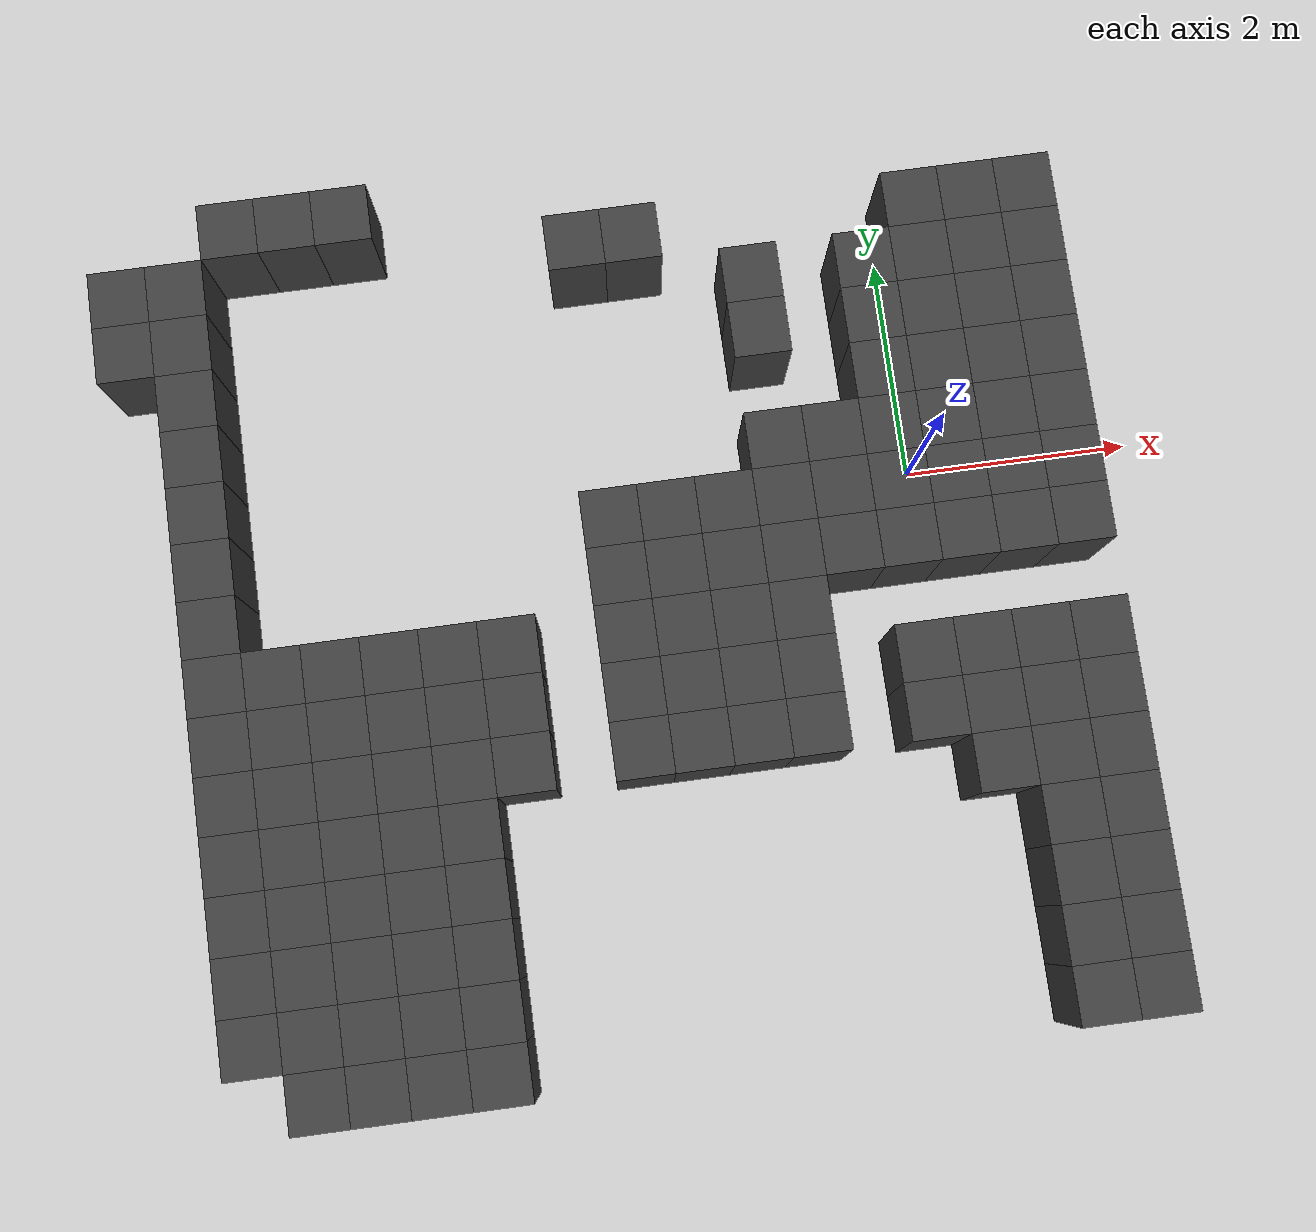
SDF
<sdf version="1.7">
 <world name="map_14735">
  <model name="ground_plane">
   <static>true</static>
   <link name="link">
    <collision name="collision">
     <geometry><plane><normal>0 0 1</normal><size>200 200</size></plane></geometry>
    </collision>
    <visual name="visual">
     <geometry><plane><normal>0 0 1</normal><size>200 200</size></plane></geometry>
     <material><ambient>0.8 0.8 0.8 1</ambient><diffuse>0.8 0.8 0.8 1</diffuse></material>
    </visual>
   </link>
  </model>
  <model name="maze_environment">
   <static>true</static>
   <link name="wall_592">
    <pose>-5.750 2.750 0.500 0 0 0</pose>
    <collision name="col"><geometry><box><size>0.5 0.5 1.0</size></box></geometry></collision>
    <visual name="vis">
     <geometry><box><size>0.5 0.5 1.0</size></box></geometry>
     <material><ambient>0.15 0.15 0.15 1</ambient><diffuse>0.25 0.25 0.25 1</diffuse></material>
    </visual>
   </link>
   <link name="wall_593">
    <pose>-5.250 2.750 0.500 0 0 0</pose>
    <collision name="col"><geometry><box><size>0.5 0.5 1.0</size></box></geometry></collision>
    <visual name="vis">
     <geometry><box><size>0.5 0.5 1.0</size></box></geometry>
     <material><ambient>0.15 0.15 0.15 1</ambient><diffuse>0.25 0.25 0.25 1</diffuse></material>
    </visual>
   </link>
   <link name="wall_594">
    <pose>-4.750 2.750 0.500 0 0 0</pose>
    <collision name="col"><geometry><box><size>0.5 0.5 1.0</size></box></geometry></collision>
    <visual name="vis">
     <geometry><box><size>0.5 0.5 1.0</size></box></geometry>
     <material><ambient>0.15 0.15 0.15 1</ambient><diffuse>0.25 0.25 0.25 1</diffuse></material>
    </visual>
   </link>
   <link name="wall_621">
    <pose>-6.750 2.250 0.500 0 0 0</pose>
    <collision name="col"><geometry><box><size>0.5 0.5 1.0</size></box></geometry></collision>
    <visual name="vis">
     <geometry><box><size>0.5 0.5 1.0</size></box></geometry>
     <material><ambient>0.15 0.15 0.15 1</ambient><diffuse>0.25 0.25 0.25 1</diffuse></material>
    </visual>
   </link>
   <link name="wall_622">
    <pose>-6.250 2.250 0.500 0 0 0</pose>
    <collision name="col"><geometry><box><size>0.5 0.5 1.0</size></box></geometry></collision>
    <visual name="vis">
     <geometry><box><size>0.5 0.5 1.0</size></box></geometry>
     <material><ambient>0.15 0.15 0.15 1</ambient><diffuse>0.25 0.25 0.25 1</diffuse></material>
    </visual>
   </link>
   <link name="wall_623">
    <pose>-2.750 2.250 0.500 0 0 0</pose>
    <collision name="col"><geometry><box><size>0.5 0.5 1.0</size></box></geometry></collision>
    <visual name="vis">
     <geometry><box><size>0.5 0.5 1.0</size></box></geometry>
     <material><ambient>0.15 0.15 0.15 1</ambient><diffuse>0.25 0.25 0.25 1</diffuse></material>
    </visual>
   </link>
   <link name="wall_624">
    <pose>-2.250 2.250 0.500 0 0 0</pose>
    <collision name="col"><geometry><box><size>0.5 0.5 1.0</size></box></geometry></collision>
    <visual name="vis">
     <geometry><box><size>0.5 0.5 1.0</size></box></geometry>
     <material><ambient>0.15 0.15 0.15 1</ambient><diffuse>0.25 0.25 0.25 1</diffuse></material>
    </visual>
   </link>
   <link name="wall_625">
    <pose>0.250 2.250 0.500 0 0 0</pose>
    <collision name="col"><geometry><box><size>0.5 0.5 1.0</size></box></geometry></collision>
    <visual name="vis">
     <geometry><box><size>0.5 0.5 1.0</size></box></geometry>
     <material><ambient>0.15 0.15 0.15 1</ambient><diffuse>0.25 0.25 0.25 1</diffuse></material>
    </visual>
   </link>
   <link name="wall_626">
    <pose>0.750 2.250 0.500 0 0 0</pose>
    <collision name="col"><geometry><box><size>0.5 0.5 1.0</size></box></geometry></collision>
    <visual name="vis">
     <geometry><box><size>0.5 0.5 1.0</size></box></geometry>
     <material><ambient>0.15 0.15 0.15 1</ambient><diffuse>0.25 0.25 0.25 1</diffuse></material>
    </visual>
   </link>
   <link name="wall_627">
    <pose>1.250 2.250 0.500 0 0 0</pose>
    <collision name="col"><geometry><box><size>0.5 0.5 1.0</size></box></geometry></collision>
    <visual name="vis">
     <geometry><box><size>0.5 0.5 1.0</size></box></geometry>
     <material><ambient>0.15 0.15 0.15 1</ambient><diffuse>0.25 0.25 0.25 1</diffuse></material>
    </visual>
   </link>
   <link name="wall_640">
    <pose>-6.750 1.750 0.500 0 0 0</pose>
    <collision name="col"><geometry><box><size>0.5 0.5 1.0</size></box></geometry></collision>
    <visual name="vis">
     <geometry><box><size>0.5 0.5 1.0</size></box></geometry>
     <material><ambient>0.15 0.15 0.15 1</ambient><diffuse>0.25 0.25 0.25 1</diffuse></material>
    </visual>
   </link>
   <link name="wall_641">
    <pose>-6.250 1.750 0.500 0 0 0</pose>
    <collision name="col"><geometry><box><size>0.5 0.5 1.0</size></box></geometry></collision>
    <visual name="vis">
     <geometry><box><size>0.5 0.5 1.0</size></box></geometry>
     <material><ambient>0.15 0.15 0.15 1</ambient><diffuse>0.25 0.25 0.25 1</diffuse></material>
    </visual>
   </link>
   <link name="wall_642">
    <pose>-1.250 1.750 0.500 0 0 0</pose>
    <collision name="col"><geometry><box><size>0.5 0.5 1.0</size></box></geometry></collision>
    <visual name="vis">
     <geometry><box><size>0.5 0.5 1.0</size></box></geometry>
     <material><ambient>0.15 0.15 0.15 1</ambient><diffuse>0.25 0.25 0.25 1</diffuse></material>
    </visual>
   </link>
   <link name="wall_643">
    <pose>-0.250 1.750 0.500 0 0 0</pose>
    <collision name="col"><geometry><box><size>0.5 0.5 1.0</size></box></geometry></collision>
    <visual name="vis">
     <geometry><box><size>0.5 0.5 1.0</size></box></geometry>
     <material><ambient>0.15 0.15 0.15 1</ambient><diffuse>0.25 0.25 0.25 1</diffuse></material>
    </visual>
   </link>
   <link name="wall_644">
    <pose>0.250 1.750 0.500 0 0 0</pose>
    <collision name="col"><geometry><box><size>0.5 0.5 1.0</size></box></geometry></collision>
    <visual name="vis">
     <geometry><box><size>0.5 0.5 1.0</size></box></geometry>
     <material><ambient>0.15 0.15 0.15 1</ambient><diffuse>0.25 0.25 0.25 1</diffuse></material>
    </visual>
   </link>
   <link name="wall_645">
    <pose>0.750 1.750 0.500 0 0 0</pose>
    <collision name="col"><geometry><box><size>0.5 0.5 1.0</size></box></geometry></collision>
    <visual name="vis">
     <geometry><box><size>0.5 0.5 1.0</size></box></geometry>
     <material><ambient>0.15 0.15 0.15 1</ambient><diffuse>0.25 0.25 0.25 1</diffuse></material>
    </visual>
   </link>
   <link name="wall_646">
    <pose>1.250 1.750 0.500 0 0 0</pose>
    <collision name="col"><geometry><box><size>0.5 0.5 1.0</size></box></geometry></collision>
    <visual name="vis">
     <geometry><box><size>0.5 0.5 1.0</size></box></geometry>
     <material><ambient>0.15 0.15 0.15 1</ambient><diffuse>0.25 0.25 0.25 1</diffuse></material>
    </visual>
   </link>
   <link name="wall_667">
    <pose>-6.250 1.250 0.500 0 0 0</pose>
    <collision name="col"><geometry><box><size>0.5 0.5 1.0</size></box></geometry></collision>
    <visual name="vis">
     <geometry><box><size>0.5 0.5 1.0</size></box></geometry>
     <material><ambient>0.15 0.15 0.15 1</ambient><diffuse>0.25 0.25 0.25 1</diffuse></material>
    </visual>
   </link>
   <link name="wall_668">
    <pose>-1.250 1.250 0.500 0 0 0</pose>
    <collision name="col"><geometry><box><size>0.5 0.5 1.0</size></box></geometry></collision>
    <visual name="vis">
     <geometry><box><size>0.5 0.5 1.0</size></box></geometry>
     <material><ambient>0.15 0.15 0.15 1</ambient><diffuse>0.25 0.25 0.25 1</diffuse></material>
    </visual>
   </link>
   <link name="wall_669">
    <pose>-0.250 1.250 0.500 0 0 0</pose>
    <collision name="col"><geometry><box><size>0.5 0.5 1.0</size></box></geometry></collision>
    <visual name="vis">
     <geometry><box><size>0.5 0.5 1.0</size></box></geometry>
     <material><ambient>0.15 0.15 0.15 1</ambient><diffuse>0.25 0.25 0.25 1</diffuse></material>
    </visual>
   </link>
   <link name="wall_670">
    <pose>0.250 1.250 0.500 0 0 0</pose>
    <collision name="col"><geometry><box><size>0.5 0.5 1.0</size></box></geometry></collision>
    <visual name="vis">
     <geometry><box><size>0.5 0.5 1.0</size></box></geometry>
     <material><ambient>0.15 0.15 0.15 1</ambient><diffuse>0.25 0.25 0.25 1</diffuse></material>
    </visual>
   </link>
   <link name="wall_671">
    <pose>0.750 1.250 0.500 0 0 0</pose>
    <collision name="col"><geometry><box><size>0.5 0.5 1.0</size></box></geometry></collision>
    <visual name="vis">
     <geometry><box><size>0.5 0.5 1.0</size></box></geometry>
     <material><ambient>0.15 0.15 0.15 1</ambient><diffuse>0.25 0.25 0.25 1</diffuse></material>
    </visual>
   </link>
   <link name="wall_672">
    <pose>1.250 1.250 0.500 0 0 0</pose>
    <collision name="col"><geometry><box><size>0.5 0.5 1.0</size></box></geometry></collision>
    <visual name="vis">
     <geometry><box><size>0.5 0.5 1.0</size></box></geometry>
     <material><ambient>0.15 0.15 0.15 1</ambient><diffuse>0.25 0.25 0.25 1</diffuse></material>
    </visual>
   </link>
   <link name="wall_693">
    <pose>-6.250 0.750 0.500 0 0 0</pose>
    <collision name="col"><geometry><box><size>0.5 0.5 1.0</size></box></geometry></collision>
    <visual name="vis">
     <geometry><box><size>0.5 0.5 1.0</size></box></geometry>
     <material><ambient>0.15 0.15 0.15 1</ambient><diffuse>0.25 0.25 0.25 1</diffuse></material>
    </visual>
   </link>
   <link name="wall_694">
    <pose>-0.250 0.750 0.500 0 0 0</pose>
    <collision name="col"><geometry><box><size>0.5 0.5 1.0</size></box></geometry></collision>
    <visual name="vis">
     <geometry><box><size>0.5 0.5 1.0</size></box></geometry>
     <material><ambient>0.15 0.15 0.15 1</ambient><diffuse>0.25 0.25 0.25 1</diffuse></material>
    </visual>
   </link>
   <link name="wall_695">
    <pose>0.250 0.750 0.500 0 0 0</pose>
    <collision name="col"><geometry><box><size>0.5 0.5 1.0</size></box></geometry></collision>
    <visual name="vis">
     <geometry><box><size>0.5 0.5 1.0</size></box></geometry>
     <material><ambient>0.15 0.15 0.15 1</ambient><diffuse>0.25 0.25 0.25 1</diffuse></material>
    </visual>
   </link>
   <link name="wall_696">
    <pose>0.750 0.750 0.500 0 0 0</pose>
    <collision name="col"><geometry><box><size>0.5 0.5 1.0</size></box></geometry></collision>
    <visual name="vis">
     <geometry><box><size>0.5 0.5 1.0</size></box></geometry>
     <material><ambient>0.15 0.15 0.15 1</ambient><diffuse>0.25 0.25 0.25 1</diffuse></material>
    </visual>
   </link>
   <link name="wall_697">
    <pose>1.250 0.750 0.500 0 0 0</pose>
    <collision name="col"><geometry><box><size>0.5 0.5 1.0</size></box></geometry></collision>
    <visual name="vis">
     <geometry><box><size>0.5 0.5 1.0</size></box></geometry>
     <material><ambient>0.15 0.15 0.15 1</ambient><diffuse>0.25 0.25 0.25 1</diffuse></material>
    </visual>
   </link>
   <link name="wall_718">
    <pose>-6.250 0.250 0.500 0 0 0</pose>
    <collision name="col"><geometry><box><size>0.5 0.5 1.0</size></box></geometry></collision>
    <visual name="vis">
     <geometry><box><size>0.5 0.5 1.0</size></box></geometry>
     <material><ambient>0.15 0.15 0.15 1</ambient><diffuse>0.25 0.25 0.25 1</diffuse></material>
    </visual>
   </link>
   <link name="wall_719">
    <pose>-1.250 0.250 0.500 0 0 0</pose>
    <collision name="col"><geometry><box><size>0.5 0.5 1.0</size></box></geometry></collision>
    <visual name="vis">
     <geometry><box><size>0.5 0.5 1.0</size></box></geometry>
     <material><ambient>0.15 0.15 0.15 1</ambient><diffuse>0.25 0.25 0.25 1</diffuse></material>
    </visual>
   </link>
   <link name="wall_720">
    <pose>-0.750 0.250 0.500 0 0 0</pose>
    <collision name="col"><geometry><box><size>0.5 0.5 1.0</size></box></geometry></collision>
    <visual name="vis">
     <geometry><box><size>0.5 0.5 1.0</size></box></geometry>
     <material><ambient>0.15 0.15 0.15 1</ambient><diffuse>0.25 0.25 0.25 1</diffuse></material>
    </visual>
   </link>
   <link name="wall_721">
    <pose>-0.250 0.250 0.500 0 0 0</pose>
    <collision name="col"><geometry><box><size>0.5 0.5 1.0</size></box></geometry></collision>
    <visual name="vis">
     <geometry><box><size>0.5 0.5 1.0</size></box></geometry>
     <material><ambient>0.15 0.15 0.15 1</ambient><diffuse>0.25 0.25 0.25 1</diffuse></material>
    </visual>
   </link>
   <link name="wall_722">
    <pose>0.250 0.250 0.500 0 0 0</pose>
    <collision name="col"><geometry><box><size>0.5 0.5 1.0</size></box></geometry></collision>
    <visual name="vis">
     <geometry><box><size>0.5 0.5 1.0</size></box></geometry>
     <material><ambient>0.15 0.15 0.15 1</ambient><diffuse>0.25 0.25 0.25 1</diffuse></material>
    </visual>
   </link>
   <link name="wall_723">
    <pose>0.750 0.250 0.500 0 0 0</pose>
    <collision name="col"><geometry><box><size>0.5 0.5 1.0</size></box></geometry></collision>
    <visual name="vis">
     <geometry><box><size>0.5 0.5 1.0</size></box></geometry>
     <material><ambient>0.15 0.15 0.15 1</ambient><diffuse>0.25 0.25 0.25 1</diffuse></material>
    </visual>
   </link>
   <link name="wall_724">
    <pose>1.250 0.250 0.500 0 0 0</pose>
    <collision name="col"><geometry><box><size>0.5 0.5 1.0</size></box></geometry></collision>
    <visual name="vis">
     <geometry><box><size>0.5 0.5 1.0</size></box></geometry>
     <material><ambient>0.15 0.15 0.15 1</ambient><diffuse>0.25 0.25 0.25 1</diffuse></material>
    </visual>
   </link>
   <link name="wall_758">
    <pose>-6.250 -0.250 0.500 0 0 0</pose>
    <collision name="col"><geometry><box><size>0.5 0.5 1.0</size></box></geometry></collision>
    <visual name="vis">
     <geometry><box><size>0.5 0.5 1.0</size></box></geometry>
     <material><ambient>0.15 0.15 0.15 1</ambient><diffuse>0.25 0.25 0.25 1</diffuse></material>
    </visual>
   </link>
   <link name="wall_759">
    <pose>-2.750 -0.250 0.500 0 0 0</pose>
    <collision name="col"><geometry><box><size>0.5 0.5 1.0</size></box></geometry></collision>
    <visual name="vis">
     <geometry><box><size>0.5 0.5 1.0</size></box></geometry>
     <material><ambient>0.15 0.15 0.15 1</ambient><diffuse>0.25 0.25 0.25 1</diffuse></material>
    </visual>
   </link>
   <link name="wall_760">
    <pose>-2.250 -0.250 0.500 0 0 0</pose>
    <collision name="col"><geometry><box><size>0.5 0.5 1.0</size></box></geometry></collision>
    <visual name="vis">
     <geometry><box><size>0.5 0.5 1.0</size></box></geometry>
     <material><ambient>0.15 0.15 0.15 1</ambient><diffuse>0.25 0.25 0.25 1</diffuse></material>
    </visual>
   </link>
   <link name="wall_761">
    <pose>-1.750 -0.250 0.500 0 0 0</pose>
    <collision name="col"><geometry><box><size>0.5 0.5 1.0</size></box></geometry></collision>
    <visual name="vis">
     <geometry><box><size>0.5 0.5 1.0</size></box></geometry>
     <material><ambient>0.15 0.15 0.15 1</ambient><diffuse>0.25 0.25 0.25 1</diffuse></material>
    </visual>
   </link>
   <link name="wall_762">
    <pose>-1.250 -0.250 0.500 0 0 0</pose>
    <collision name="col"><geometry><box><size>0.5 0.5 1.0</size></box></geometry></collision>
    <visual name="vis">
     <geometry><box><size>0.5 0.5 1.0</size></box></geometry>
     <material><ambient>0.15 0.15 0.15 1</ambient><diffuse>0.25 0.25 0.25 1</diffuse></material>
    </visual>
   </link>
   <link name="wall_763">
    <pose>-0.750 -0.250 0.500 0 0 0</pose>
    <collision name="col"><geometry><box><size>0.5 0.5 1.0</size></box></geometry></collision>
    <visual name="vis">
     <geometry><box><size>0.5 0.5 1.0</size></box></geometry>
     <material><ambient>0.15 0.15 0.15 1</ambient><diffuse>0.25 0.25 0.25 1</diffuse></material>
    </visual>
   </link>
   <link name="wall_764">
    <pose>-0.250 -0.250 0.500 0 0 0</pose>
    <collision name="col"><geometry><box><size>0.5 0.5 1.0</size></box></geometry></collision>
    <visual name="vis">
     <geometry><box><size>0.5 0.5 1.0</size></box></geometry>
     <material><ambient>0.15 0.15 0.15 1</ambient><diffuse>0.25 0.25 0.25 1</diffuse></material>
    </visual>
   </link>
   <link name="wall_765">
    <pose>0.250 -0.250 0.500 0 0 0</pose>
    <collision name="col"><geometry><box><size>0.5 0.5 1.0</size></box></geometry></collision>
    <visual name="vis">
     <geometry><box><size>0.5 0.5 1.0</size></box></geometry>
     <material><ambient>0.15 0.15 0.15 1</ambient><diffuse>0.25 0.25 0.25 1</diffuse></material>
    </visual>
   </link>
   <link name="wall_766">
    <pose>0.750 -0.250 0.500 0 0 0</pose>
    <collision name="col"><geometry><box><size>0.5 0.5 1.0</size></box></geometry></collision>
    <visual name="vis">
     <geometry><box><size>0.5 0.5 1.0</size></box></geometry>
     <material><ambient>0.15 0.15 0.15 1</ambient><diffuse>0.25 0.25 0.25 1</diffuse></material>
    </visual>
   </link>
   <link name="wall_767">
    <pose>1.250 -0.250 0.500 0 0 0</pose>
    <collision name="col"><geometry><box><size>0.5 0.5 1.0</size></box></geometry></collision>
    <visual name="vis">
     <geometry><box><size>0.5 0.5 1.0</size></box></geometry>
     <material><ambient>0.15 0.15 0.15 1</ambient><diffuse>0.25 0.25 0.25 1</diffuse></material>
    </visual>
   </link>
   <link name="wall_794">
    <pose>-6.250 -0.750 0.500 0 0 0</pose>
    <collision name="col"><geometry><box><size>0.5 0.5 1.0</size></box></geometry></collision>
    <visual name="vis">
     <geometry><box><size>0.5 0.5 1.0</size></box></geometry>
     <material><ambient>0.15 0.15 0.15 1</ambient><diffuse>0.25 0.25 0.25 1</diffuse></material>
    </visual>
   </link>
   <link name="wall_795">
    <pose>-2.750 -0.750 0.500 0 0 0</pose>
    <collision name="col"><geometry><box><size>0.5 0.5 1.0</size></box></geometry></collision>
    <visual name="vis">
     <geometry><box><size>0.5 0.5 1.0</size></box></geometry>
     <material><ambient>0.15 0.15 0.15 1</ambient><diffuse>0.25 0.25 0.25 1</diffuse></material>
    </visual>
   </link>
   <link name="wall_796">
    <pose>-2.250 -0.750 0.500 0 0 0</pose>
    <collision name="col"><geometry><box><size>0.5 0.5 1.0</size></box></geometry></collision>
    <visual name="vis">
     <geometry><box><size>0.5 0.5 1.0</size></box></geometry>
     <material><ambient>0.15 0.15 0.15 1</ambient><diffuse>0.25 0.25 0.25 1</diffuse></material>
    </visual>
   </link>
   <link name="wall_797">
    <pose>-1.750 -0.750 0.500 0 0 0</pose>
    <collision name="col"><geometry><box><size>0.5 0.5 1.0</size></box></geometry></collision>
    <visual name="vis">
     <geometry><box><size>0.5 0.5 1.0</size></box></geometry>
     <material><ambient>0.15 0.15 0.15 1</ambient><diffuse>0.25 0.25 0.25 1</diffuse></material>
    </visual>
   </link>
   <link name="wall_798">
    <pose>-1.250 -0.750 0.500 0 0 0</pose>
    <collision name="col"><geometry><box><size>0.5 0.5 1.0</size></box></geometry></collision>
    <visual name="vis">
     <geometry><box><size>0.5 0.5 1.0</size></box></geometry>
     <material><ambient>0.15 0.15 0.15 1</ambient><diffuse>0.25 0.25 0.25 1</diffuse></material>
    </visual>
   </link>
   <link name="wall_799">
    <pose>-0.750 -0.750 0.500 0 0 0</pose>
    <collision name="col"><geometry><box><size>0.5 0.5 1.0</size></box></geometry></collision>
    <visual name="vis">
     <geometry><box><size>0.5 0.5 1.0</size></box></geometry>
     <material><ambient>0.15 0.15 0.15 1</ambient><diffuse>0.25 0.25 0.25 1</diffuse></material>
    </visual>
   </link>
   <link name="wall_800">
    <pose>-0.250 -0.750 0.500 0 0 0</pose>
    <collision name="col"><geometry><box><size>0.5 0.5 1.0</size></box></geometry></collision>
    <visual name="vis">
     <geometry><box><size>0.5 0.5 1.0</size></box></geometry>
     <material><ambient>0.15 0.15 0.15 1</ambient><diffuse>0.25 0.25 0.25 1</diffuse></material>
    </visual>
   </link>
   <link name="wall_801">
    <pose>0.250 -0.750 0.500 0 0 0</pose>
    <collision name="col"><geometry><box><size>0.5 0.5 1.0</size></box></geometry></collision>
    <visual name="vis">
     <geometry><box><size>0.5 0.5 1.0</size></box></geometry>
     <material><ambient>0.15 0.15 0.15 1</ambient><diffuse>0.25 0.25 0.25 1</diffuse></material>
    </visual>
   </link>
   <link name="wall_802">
    <pose>0.750 -0.750 0.500 0 0 0</pose>
    <collision name="col"><geometry><box><size>0.5 0.5 1.0</size></box></geometry></collision>
    <visual name="vis">
     <geometry><box><size>0.5 0.5 1.0</size></box></geometry>
     <material><ambient>0.15 0.15 0.15 1</ambient><diffuse>0.25 0.25 0.25 1</diffuse></material>
    </visual>
   </link>
   <link name="wall_803">
    <pose>1.250 -0.750 0.500 0 0 0</pose>
    <collision name="col"><geometry><box><size>0.5 0.5 1.0</size></box></geometry></collision>
    <visual name="vis">
     <geometry><box><size>0.5 0.5 1.0</size></box></geometry>
     <material><ambient>0.15 0.15 0.15 1</ambient><diffuse>0.25 0.25 0.25 1</diffuse></material>
    </visual>
   </link>
   <link name="wall_830">
    <pose>-6.250 -1.250 0.500 0 0 0</pose>
    <collision name="col"><geometry><box><size>0.5 0.5 1.0</size></box></geometry></collision>
    <visual name="vis">
     <geometry><box><size>0.5 0.5 1.0</size></box></geometry>
     <material><ambient>0.15 0.15 0.15 1</ambient><diffuse>0.25 0.25 0.25 1</diffuse></material>
    </visual>
   </link>
   <link name="wall_831">
    <pose>-5.750 -1.250 0.500 0 0 0</pose>
    <collision name="col"><geometry><box><size>0.5 0.5 1.0</size></box></geometry></collision>
    <visual name="vis">
     <geometry><box><size>0.5 0.5 1.0</size></box></geometry>
     <material><ambient>0.15 0.15 0.15 1</ambient><diffuse>0.25 0.25 0.25 1</diffuse></material>
    </visual>
   </link>
   <link name="wall_832">
    <pose>-5.250 -1.250 0.500 0 0 0</pose>
    <collision name="col"><geometry><box><size>0.5 0.5 1.0</size></box></geometry></collision>
    <visual name="vis">
     <geometry><box><size>0.5 0.5 1.0</size></box></geometry>
     <material><ambient>0.15 0.15 0.15 1</ambient><diffuse>0.25 0.25 0.25 1</diffuse></material>
    </visual>
   </link>
   <link name="wall_833">
    <pose>-4.750 -1.250 0.500 0 0 0</pose>
    <collision name="col"><geometry><box><size>0.5 0.5 1.0</size></box></geometry></collision>
    <visual name="vis">
     <geometry><box><size>0.5 0.5 1.0</size></box></geometry>
     <material><ambient>0.15 0.15 0.15 1</ambient><diffuse>0.25 0.25 0.25 1</diffuse></material>
    </visual>
   </link>
   <link name="wall_834">
    <pose>-4.250 -1.250 0.500 0 0 0</pose>
    <collision name="col"><geometry><box><size>0.5 0.5 1.0</size></box></geometry></collision>
    <visual name="vis">
     <geometry><box><size>0.5 0.5 1.0</size></box></geometry>
     <material><ambient>0.15 0.15 0.15 1</ambient><diffuse>0.25 0.25 0.25 1</diffuse></material>
    </visual>
   </link>
   <link name="wall_835">
    <pose>-3.750 -1.250 0.500 0 0 0</pose>
    <collision name="col"><geometry><box><size>0.5 0.5 1.0</size></box></geometry></collision>
    <visual name="vis">
     <geometry><box><size>0.5 0.5 1.0</size></box></geometry>
     <material><ambient>0.15 0.15 0.15 1</ambient><diffuse>0.25 0.25 0.25 1</diffuse></material>
    </visual>
   </link>
   <link name="wall_836">
    <pose>-2.750 -1.250 0.500 0 0 0</pose>
    <collision name="col"><geometry><box><size>0.5 0.5 1.0</size></box></geometry></collision>
    <visual name="vis">
     <geometry><box><size>0.5 0.5 1.0</size></box></geometry>
     <material><ambient>0.15 0.15 0.15 1</ambient><diffuse>0.25 0.25 0.25 1</diffuse></material>
    </visual>
   </link>
   <link name="wall_837">
    <pose>-2.250 -1.250 0.500 0 0 0</pose>
    <collision name="col"><geometry><box><size>0.5 0.5 1.0</size></box></geometry></collision>
    <visual name="vis">
     <geometry><box><size>0.5 0.5 1.0</size></box></geometry>
     <material><ambient>0.15 0.15 0.15 1</ambient><diffuse>0.25 0.25 0.25 1</diffuse></material>
    </visual>
   </link>
   <link name="wall_838">
    <pose>-1.750 -1.250 0.500 0 0 0</pose>
    <collision name="col"><geometry><box><size>0.5 0.5 1.0</size></box></geometry></collision>
    <visual name="vis">
     <geometry><box><size>0.5 0.5 1.0</size></box></geometry>
     <material><ambient>0.15 0.15 0.15 1</ambient><diffuse>0.25 0.25 0.25 1</diffuse></material>
    </visual>
   </link>
   <link name="wall_839">
    <pose>-1.250 -1.250 0.500 0 0 0</pose>
    <collision name="col"><geometry><box><size>0.5 0.5 1.0</size></box></geometry></collision>
    <visual name="vis">
     <geometry><box><size>0.5 0.5 1.0</size></box></geometry>
     <material><ambient>0.15 0.15 0.15 1</ambient><diffuse>0.25 0.25 0.25 1</diffuse></material>
    </visual>
   </link>
   <link name="wall_866">
    <pose>-6.250 -1.750 0.500 0 0 0</pose>
    <collision name="col"><geometry><box><size>0.5 0.5 1.0</size></box></geometry></collision>
    <visual name="vis">
     <geometry><box><size>0.5 0.5 1.0</size></box></geometry>
     <material><ambient>0.15 0.15 0.15 1</ambient><diffuse>0.25 0.25 0.25 1</diffuse></material>
    </visual>
   </link>
   <link name="wall_867">
    <pose>-5.750 -1.750 0.500 0 0 0</pose>
    <collision name="col"><geometry><box><size>0.5 0.5 1.0</size></box></geometry></collision>
    <visual name="vis">
     <geometry><box><size>0.5 0.5 1.0</size></box></geometry>
     <material><ambient>0.15 0.15 0.15 1</ambient><diffuse>0.25 0.25 0.25 1</diffuse></material>
    </visual>
   </link>
   <link name="wall_868">
    <pose>-5.250 -1.750 0.500 0 0 0</pose>
    <collision name="col"><geometry><box><size>0.5 0.5 1.0</size></box></geometry></collision>
    <visual name="vis">
     <geometry><box><size>0.5 0.5 1.0</size></box></geometry>
     <material><ambient>0.15 0.15 0.15 1</ambient><diffuse>0.25 0.25 0.25 1</diffuse></material>
    </visual>
   </link>
   <link name="wall_869">
    <pose>-4.750 -1.750 0.500 0 0 0</pose>
    <collision name="col"><geometry><box><size>0.5 0.5 1.0</size></box></geometry></collision>
    <visual name="vis">
     <geometry><box><size>0.5 0.5 1.0</size></box></geometry>
     <material><ambient>0.15 0.15 0.15 1</ambient><diffuse>0.25 0.25 0.25 1</diffuse></material>
    </visual>
   </link>
   <link name="wall_870">
    <pose>-4.250 -1.750 0.500 0 0 0</pose>
    <collision name="col"><geometry><box><size>0.5 0.5 1.0</size></box></geometry></collision>
    <visual name="vis">
     <geometry><box><size>0.5 0.5 1.0</size></box></geometry>
     <material><ambient>0.15 0.15 0.15 1</ambient><diffuse>0.25 0.25 0.25 1</diffuse></material>
    </visual>
   </link>
   <link name="wall_871">
    <pose>-3.750 -1.750 0.500 0 0 0</pose>
    <collision name="col"><geometry><box><size>0.5 0.5 1.0</size></box></geometry></collision>
    <visual name="vis">
     <geometry><box><size>0.5 0.5 1.0</size></box></geometry>
     <material><ambient>0.15 0.15 0.15 1</ambient><diffuse>0.25 0.25 0.25 1</diffuse></material>
    </visual>
   </link>
   <link name="wall_872">
    <pose>-2.750 -1.750 0.500 0 0 0</pose>
    <collision name="col"><geometry><box><size>0.5 0.5 1.0</size></box></geometry></collision>
    <visual name="vis">
     <geometry><box><size>0.5 0.5 1.0</size></box></geometry>
     <material><ambient>0.15 0.15 0.15 1</ambient><diffuse>0.25 0.25 0.25 1</diffuse></material>
    </visual>
   </link>
   <link name="wall_873">
    <pose>-2.250 -1.750 0.500 0 0 0</pose>
    <collision name="col"><geometry><box><size>0.5 0.5 1.0</size></box></geometry></collision>
    <visual name="vis">
     <geometry><box><size>0.5 0.5 1.0</size></box></geometry>
     <material><ambient>0.15 0.15 0.15 1</ambient><diffuse>0.25 0.25 0.25 1</diffuse></material>
    </visual>
   </link>
   <link name="wall_874">
    <pose>-1.750 -1.750 0.500 0 0 0</pose>
    <collision name="col"><geometry><box><size>0.5 0.5 1.0</size></box></geometry></collision>
    <visual name="vis">
     <geometry><box><size>0.5 0.5 1.0</size></box></geometry>
     <material><ambient>0.15 0.15 0.15 1</ambient><diffuse>0.25 0.25 0.25 1</diffuse></material>
    </visual>
   </link>
   <link name="wall_875">
    <pose>-1.250 -1.750 0.500 0 0 0</pose>
    <collision name="col"><geometry><box><size>0.5 0.5 1.0</size></box></geometry></collision>
    <visual name="vis">
     <geometry><box><size>0.5 0.5 1.0</size></box></geometry>
     <material><ambient>0.15 0.15 0.15 1</ambient><diffuse>0.25 0.25 0.25 1</diffuse></material>
    </visual>
   </link>
   <link name="wall_876">
    <pose>-0.250 -1.750 0.500 0 0 0</pose>
    <collision name="col"><geometry><box><size>0.5 0.5 1.0</size></box></geometry></collision>
    <visual name="vis">
     <geometry><box><size>0.5 0.5 1.0</size></box></geometry>
     <material><ambient>0.15 0.15 0.15 1</ambient><diffuse>0.25 0.25 0.25 1</diffuse></material>
    </visual>
   </link>
   <link name="wall_877">
    <pose>0.250 -1.750 0.500 0 0 0</pose>
    <collision name="col"><geometry><box><size>0.5 0.5 1.0</size></box></geometry></collision>
    <visual name="vis">
     <geometry><box><size>0.5 0.5 1.0</size></box></geometry>
     <material><ambient>0.15 0.15 0.15 1</ambient><diffuse>0.25 0.25 0.25 1</diffuse></material>
    </visual>
   </link>
   <link name="wall_878">
    <pose>0.750 -1.750 0.500 0 0 0</pose>
    <collision name="col"><geometry><box><size>0.5 0.5 1.0</size></box></geometry></collision>
    <visual name="vis">
     <geometry><box><size>0.5 0.5 1.0</size></box></geometry>
     <material><ambient>0.15 0.15 0.15 1</ambient><diffuse>0.25 0.25 0.25 1</diffuse></material>
    </visual>
   </link>
   <link name="wall_879">
    <pose>1.250 -1.750 0.500 0 0 0</pose>
    <collision name="col"><geometry><box><size>0.5 0.5 1.0</size></box></geometry></collision>
    <visual name="vis">
     <geometry><box><size>0.5 0.5 1.0</size></box></geometry>
     <material><ambient>0.15 0.15 0.15 1</ambient><diffuse>0.25 0.25 0.25 1</diffuse></material>
    </visual>
   </link>
   <link name="wall_906">
    <pose>-6.250 -2.250 0.500 0 0 0</pose>
    <collision name="col"><geometry><box><size>0.5 0.5 1.0</size></box></geometry></collision>
    <visual name="vis">
     <geometry><box><size>0.5 0.5 1.0</size></box></geometry>
     <material><ambient>0.15 0.15 0.15 1</ambient><diffuse>0.25 0.25 0.25 1</diffuse></material>
    </visual>
   </link>
   <link name="wall_907">
    <pose>-5.750 -2.250 0.500 0 0 0</pose>
    <collision name="col"><geometry><box><size>0.5 0.5 1.0</size></box></geometry></collision>
    <visual name="vis">
     <geometry><box><size>0.5 0.5 1.0</size></box></geometry>
     <material><ambient>0.15 0.15 0.15 1</ambient><diffuse>0.25 0.25 0.25 1</diffuse></material>
    </visual>
   </link>
   <link name="wall_908">
    <pose>-5.250 -2.250 0.500 0 0 0</pose>
    <collision name="col"><geometry><box><size>0.5 0.5 1.0</size></box></geometry></collision>
    <visual name="vis">
     <geometry><box><size>0.5 0.5 1.0</size></box></geometry>
     <material><ambient>0.15 0.15 0.15 1</ambient><diffuse>0.25 0.25 0.25 1</diffuse></material>
    </visual>
   </link>
   <link name="wall_909">
    <pose>-4.750 -2.250 0.500 0 0 0</pose>
    <collision name="col"><geometry><box><size>0.5 0.5 1.0</size></box></geometry></collision>
    <visual name="vis">
     <geometry><box><size>0.5 0.5 1.0</size></box></geometry>
     <material><ambient>0.15 0.15 0.15 1</ambient><diffuse>0.25 0.25 0.25 1</diffuse></material>
    </visual>
   </link>
   <link name="wall_910">
    <pose>-4.250 -2.250 0.500 0 0 0</pose>
    <collision name="col"><geometry><box><size>0.5 0.5 1.0</size></box></geometry></collision>
    <visual name="vis">
     <geometry><box><size>0.5 0.5 1.0</size></box></geometry>
     <material><ambient>0.15 0.15 0.15 1</ambient><diffuse>0.25 0.25 0.25 1</diffuse></material>
    </visual>
   </link>
   <link name="wall_911">
    <pose>-3.750 -2.250 0.500 0 0 0</pose>
    <collision name="col"><geometry><box><size>0.5 0.5 1.0</size></box></geometry></collision>
    <visual name="vis">
     <geometry><box><size>0.5 0.5 1.0</size></box></geometry>
     <material><ambient>0.15 0.15 0.15 1</ambient><diffuse>0.25 0.25 0.25 1</diffuse></material>
    </visual>
   </link>
   <link name="wall_912">
    <pose>-2.750 -2.250 0.500 0 0 0</pose>
    <collision name="col"><geometry><box><size>0.5 0.5 1.0</size></box></geometry></collision>
    <visual name="vis">
     <geometry><box><size>0.5 0.5 1.0</size></box></geometry>
     <material><ambient>0.15 0.15 0.15 1</ambient><diffuse>0.25 0.25 0.25 1</diffuse></material>
    </visual>
   </link>
   <link name="wall_913">
    <pose>-2.250 -2.250 0.500 0 0 0</pose>
    <collision name="col"><geometry><box><size>0.5 0.5 1.0</size></box></geometry></collision>
    <visual name="vis">
     <geometry><box><size>0.5 0.5 1.0</size></box></geometry>
     <material><ambient>0.15 0.15 0.15 1</ambient><diffuse>0.25 0.25 0.25 1</diffuse></material>
    </visual>
   </link>
   <link name="wall_914">
    <pose>-1.750 -2.250 0.500 0 0 0</pose>
    <collision name="col"><geometry><box><size>0.5 0.5 1.0</size></box></geometry></collision>
    <visual name="vis">
     <geometry><box><size>0.5 0.5 1.0</size></box></geometry>
     <material><ambient>0.15 0.15 0.15 1</ambient><diffuse>0.25 0.25 0.25 1</diffuse></material>
    </visual>
   </link>
   <link name="wall_915">
    <pose>-1.250 -2.250 0.500 0 0 0</pose>
    <collision name="col"><geometry><box><size>0.5 0.5 1.0</size></box></geometry></collision>
    <visual name="vis">
     <geometry><box><size>0.5 0.5 1.0</size></box></geometry>
     <material><ambient>0.15 0.15 0.15 1</ambient><diffuse>0.25 0.25 0.25 1</diffuse></material>
    </visual>
   </link>
   <link name="wall_916">
    <pose>-0.250 -2.250 0.500 0 0 0</pose>
    <collision name="col"><geometry><box><size>0.5 0.5 1.0</size></box></geometry></collision>
    <visual name="vis">
     <geometry><box><size>0.5 0.5 1.0</size></box></geometry>
     <material><ambient>0.15 0.15 0.15 1</ambient><diffuse>0.25 0.25 0.25 1</diffuse></material>
    </visual>
   </link>
   <link name="wall_917">
    <pose>0.250 -2.250 0.500 0 0 0</pose>
    <collision name="col"><geometry><box><size>0.5 0.5 1.0</size></box></geometry></collision>
    <visual name="vis">
     <geometry><box><size>0.5 0.5 1.0</size></box></geometry>
     <material><ambient>0.15 0.15 0.15 1</ambient><diffuse>0.25 0.25 0.25 1</diffuse></material>
    </visual>
   </link>
   <link name="wall_918">
    <pose>0.750 -2.250 0.500 0 0 0</pose>
    <collision name="col"><geometry><box><size>0.5 0.5 1.0</size></box></geometry></collision>
    <visual name="vis">
     <geometry><box><size>0.5 0.5 1.0</size></box></geometry>
     <material><ambient>0.15 0.15 0.15 1</ambient><diffuse>0.25 0.25 0.25 1</diffuse></material>
    </visual>
   </link>
   <link name="wall_919">
    <pose>1.250 -2.250 0.500 0 0 0</pose>
    <collision name="col"><geometry><box><size>0.5 0.5 1.0</size></box></geometry></collision>
    <visual name="vis">
     <geometry><box><size>0.5 0.5 1.0</size></box></geometry>
     <material><ambient>0.15 0.15 0.15 1</ambient><diffuse>0.25 0.25 0.25 1</diffuse></material>
    </visual>
   </link>
   <link name="wall_953">
    <pose>-6.250 -2.750 0.500 0 0 0</pose>
    <collision name="col"><geometry><box><size>0.5 0.5 1.0</size></box></geometry></collision>
    <visual name="vis">
     <geometry><box><size>0.5 0.5 1.0</size></box></geometry>
     <material><ambient>0.15 0.15 0.15 1</ambient><diffuse>0.25 0.25 0.25 1</diffuse></material>
    </visual>
   </link>
   <link name="wall_954">
    <pose>-5.750 -2.750 0.500 0 0 0</pose>
    <collision name="col"><geometry><box><size>0.5 0.5 1.0</size></box></geometry></collision>
    <visual name="vis">
     <geometry><box><size>0.5 0.5 1.0</size></box></geometry>
     <material><ambient>0.15 0.15 0.15 1</ambient><diffuse>0.25 0.25 0.25 1</diffuse></material>
    </visual>
   </link>
   <link name="wall_955">
    <pose>-5.250 -2.750 0.500 0 0 0</pose>
    <collision name="col"><geometry><box><size>0.5 0.5 1.0</size></box></geometry></collision>
    <visual name="vis">
     <geometry><box><size>0.5 0.5 1.0</size></box></geometry>
     <material><ambient>0.15 0.15 0.15 1</ambient><diffuse>0.25 0.25 0.25 1</diffuse></material>
    </visual>
   </link>
   <link name="wall_956">
    <pose>-4.750 -2.750 0.500 0 0 0</pose>
    <collision name="col"><geometry><box><size>0.5 0.5 1.0</size></box></geometry></collision>
    <visual name="vis">
     <geometry><box><size>0.5 0.5 1.0</size></box></geometry>
     <material><ambient>0.15 0.15 0.15 1</ambient><diffuse>0.25 0.25 0.25 1</diffuse></material>
    </visual>
   </link>
   <link name="wall_957">
    <pose>-4.250 -2.750 0.500 0 0 0</pose>
    <collision name="col"><geometry><box><size>0.5 0.5 1.0</size></box></geometry></collision>
    <visual name="vis">
     <geometry><box><size>0.5 0.5 1.0</size></box></geometry>
     <material><ambient>0.15 0.15 0.15 1</ambient><diffuse>0.25 0.25 0.25 1</diffuse></material>
    </visual>
   </link>
   <link name="wall_958">
    <pose>0.250 -2.750 0.500 0 0 0</pose>
    <collision name="col"><geometry><box><size>0.5 0.5 1.0</size></box></geometry></collision>
    <visual name="vis">
     <geometry><box><size>0.5 0.5 1.0</size></box></geometry>
     <material><ambient>0.15 0.15 0.15 1</ambient><diffuse>0.25 0.25 0.25 1</diffuse></material>
    </visual>
   </link>
   <link name="wall_959">
    <pose>0.750 -2.750 0.500 0 0 0</pose>
    <collision name="col"><geometry><box><size>0.5 0.5 1.0</size></box></geometry></collision>
    <visual name="vis">
     <geometry><box><size>0.5 0.5 1.0</size></box></geometry>
     <material><ambient>0.15 0.15 0.15 1</ambient><diffuse>0.25 0.25 0.25 1</diffuse></material>
    </visual>
   </link>
   <link name="wall_960">
    <pose>1.250 -2.750 0.500 0 0 0</pose>
    <collision name="col"><geometry><box><size>0.5 0.5 1.0</size></box></geometry></collision>
    <visual name="vis">
     <geometry><box><size>0.5 0.5 1.0</size></box></geometry>
     <material><ambient>0.15 0.15 0.15 1</ambient><diffuse>0.25 0.25 0.25 1</diffuse></material>
    </visual>
   </link>
   <link name="wall_994">
    <pose>-6.250 -3.250 0.500 0 0 0</pose>
    <collision name="col"><geometry><box><size>0.5 0.5 1.0</size></box></geometry></collision>
    <visual name="vis">
     <geometry><box><size>0.5 0.5 1.0</size></box></geometry>
     <material><ambient>0.15 0.15 0.15 1</ambient><diffuse>0.25 0.25 0.25 1</diffuse></material>
    </visual>
   </link>
   <link name="wall_995">
    <pose>-5.750 -3.250 0.500 0 0 0</pose>
    <collision name="col"><geometry><box><size>0.5 0.5 1.0</size></box></geometry></collision>
    <visual name="vis">
     <geometry><box><size>0.5 0.5 1.0</size></box></geometry>
     <material><ambient>0.15 0.15 0.15 1</ambient><diffuse>0.25 0.25 0.25 1</diffuse></material>
    </visual>
   </link>
   <link name="wall_996">
    <pose>-5.250 -3.250 0.500 0 0 0</pose>
    <collision name="col"><geometry><box><size>0.5 0.5 1.0</size></box></geometry></collision>
    <visual name="vis">
     <geometry><box><size>0.5 0.5 1.0</size></box></geometry>
     <material><ambient>0.15 0.15 0.15 1</ambient><diffuse>0.25 0.25 0.25 1</diffuse></material>
    </visual>
   </link>
   <link name="wall_997">
    <pose>-4.750 -3.250 0.500 0 0 0</pose>
    <collision name="col"><geometry><box><size>0.5 0.5 1.0</size></box></geometry></collision>
    <visual name="vis">
     <geometry><box><size>0.5 0.5 1.0</size></box></geometry>
     <material><ambient>0.15 0.15 0.15 1</ambient><diffuse>0.25 0.25 0.25 1</diffuse></material>
    </visual>
   </link>
   <link name="wall_998">
    <pose>-4.250 -3.250 0.500 0 0 0</pose>
    <collision name="col"><geometry><box><size>0.5 0.5 1.0</size></box></geometry></collision>
    <visual name="vis">
     <geometry><box><size>0.5 0.5 1.0</size></box></geometry>
     <material><ambient>0.15 0.15 0.15 1</ambient><diffuse>0.25 0.25 0.25 1</diffuse></material>
    </visual>
   </link>
   <link name="wall_999">
    <pose>0.750 -3.250 0.500 0 0 0</pose>
    <collision name="col"><geometry><box><size>0.5 0.5 1.0</size></box></geometry></collision>
    <visual name="vis">
     <geometry><box><size>0.5 0.5 1.0</size></box></geometry>
     <material><ambient>0.15 0.15 0.15 1</ambient><diffuse>0.25 0.25 0.25 1</diffuse></material>
    </visual>
   </link>
   <link name="wall_1000">
    <pose>1.250 -3.250 0.500 0 0 0</pose>
    <collision name="col"><geometry><box><size>0.5 0.5 1.0</size></box></geometry></collision>
    <visual name="vis">
     <geometry><box><size>0.5 0.5 1.0</size></box></geometry>
     <material><ambient>0.15 0.15 0.15 1</ambient><diffuse>0.25 0.25 0.25 1</diffuse></material>
    </visual>
   </link>
   <link name="wall_1034">
    <pose>-6.250 -3.750 0.500 0 0 0</pose>
    <collision name="col"><geometry><box><size>0.5 0.5 1.0</size></box></geometry></collision>
    <visual name="vis">
     <geometry><box><size>0.5 0.5 1.0</size></box></geometry>
     <material><ambient>0.15 0.15 0.15 1</ambient><diffuse>0.25 0.25 0.25 1</diffuse></material>
    </visual>
   </link>
   <link name="wall_1035">
    <pose>-5.750 -3.750 0.500 0 0 0</pose>
    <collision name="col"><geometry><box><size>0.5 0.5 1.0</size></box></geometry></collision>
    <visual name="vis">
     <geometry><box><size>0.5 0.5 1.0</size></box></geometry>
     <material><ambient>0.15 0.15 0.15 1</ambient><diffuse>0.25 0.25 0.25 1</diffuse></material>
    </visual>
   </link>
   <link name="wall_1036">
    <pose>-5.250 -3.750 0.500 0 0 0</pose>
    <collision name="col"><geometry><box><size>0.5 0.5 1.0</size></box></geometry></collision>
    <visual name="vis">
     <geometry><box><size>0.5 0.5 1.0</size></box></geometry>
     <material><ambient>0.15 0.15 0.15 1</ambient><diffuse>0.25 0.25 0.25 1</diffuse></material>
    </visual>
   </link>
   <link name="wall_1037">
    <pose>-4.750 -3.750 0.500 0 0 0</pose>
    <collision name="col"><geometry><box><size>0.5 0.5 1.0</size></box></geometry></collision>
    <visual name="vis">
     <geometry><box><size>0.5 0.5 1.0</size></box></geometry>
     <material><ambient>0.15 0.15 0.15 1</ambient><diffuse>0.25 0.25 0.25 1</diffuse></material>
    </visual>
   </link>
   <link name="wall_1038">
    <pose>-4.250 -3.750 0.500 0 0 0</pose>
    <collision name="col"><geometry><box><size>0.5 0.5 1.0</size></box></geometry></collision>
    <visual name="vis">
     <geometry><box><size>0.5 0.5 1.0</size></box></geometry>
     <material><ambient>0.15 0.15 0.15 1</ambient><diffuse>0.25 0.25 0.25 1</diffuse></material>
    </visual>
   </link>
   <link name="wall_1039">
    <pose>0.750 -3.750 0.500 0 0 0</pose>
    <collision name="col"><geometry><box><size>0.5 0.5 1.0</size></box></geometry></collision>
    <visual name="vis">
     <geometry><box><size>0.5 0.5 1.0</size></box></geometry>
     <material><ambient>0.15 0.15 0.15 1</ambient><diffuse>0.25 0.25 0.25 1</diffuse></material>
    </visual>
   </link>
   <link name="wall_1040">
    <pose>1.250 -3.750 0.500 0 0 0</pose>
    <collision name="col"><geometry><box><size>0.5 0.5 1.0</size></box></geometry></collision>
    <visual name="vis">
     <geometry><box><size>0.5 0.5 1.0</size></box></geometry>
     <material><ambient>0.15 0.15 0.15 1</ambient><diffuse>0.25 0.25 0.25 1</diffuse></material>
    </visual>
   </link>
   <link name="wall_1074">
    <pose>-6.250 -4.250 0.500 0 0 0</pose>
    <collision name="col"><geometry><box><size>0.5 0.5 1.0</size></box></geometry></collision>
    <visual name="vis">
     <geometry><box><size>0.5 0.5 1.0</size></box></geometry>
     <material><ambient>0.15 0.15 0.15 1</ambient><diffuse>0.25 0.25 0.25 1</diffuse></material>
    </visual>
   </link>
   <link name="wall_1075">
    <pose>-5.750 -4.250 0.500 0 0 0</pose>
    <collision name="col"><geometry><box><size>0.5 0.5 1.0</size></box></geometry></collision>
    <visual name="vis">
     <geometry><box><size>0.5 0.5 1.0</size></box></geometry>
     <material><ambient>0.15 0.15 0.15 1</ambient><diffuse>0.25 0.25 0.25 1</diffuse></material>
    </visual>
   </link>
   <link name="wall_1076">
    <pose>-5.250 -4.250 0.500 0 0 0</pose>
    <collision name="col"><geometry><box><size>0.5 0.5 1.0</size></box></geometry></collision>
    <visual name="vis">
     <geometry><box><size>0.5 0.5 1.0</size></box></geometry>
     <material><ambient>0.15 0.15 0.15 1</ambient><diffuse>0.25 0.25 0.25 1</diffuse></material>
    </visual>
   </link>
   <link name="wall_1077">
    <pose>-4.750 -4.250 0.500 0 0 0</pose>
    <collision name="col"><geometry><box><size>0.5 0.5 1.0</size></box></geometry></collision>
    <visual name="vis">
     <geometry><box><size>0.5 0.5 1.0</size></box></geometry>
     <material><ambient>0.15 0.15 0.15 1</ambient><diffuse>0.25 0.25 0.25 1</diffuse></material>
    </visual>
   </link>
   <link name="wall_1078">
    <pose>-4.250 -4.250 0.500 0 0 0</pose>
    <collision name="col"><geometry><box><size>0.5 0.5 1.0</size></box></geometry></collision>
    <visual name="vis">
     <geometry><box><size>0.5 0.5 1.0</size></box></geometry>
     <material><ambient>0.15 0.15 0.15 1</ambient><diffuse>0.25 0.25 0.25 1</diffuse></material>
    </visual>
   </link>
   <link name="wall_1079">
    <pose>0.750 -4.250 0.500 0 0 0</pose>
    <collision name="col"><geometry><box><size>0.5 0.5 1.0</size></box></geometry></collision>
    <visual name="vis">
     <geometry><box><size>0.5 0.5 1.0</size></box></geometry>
     <material><ambient>0.15 0.15 0.15 1</ambient><diffuse>0.25 0.25 0.25 1</diffuse></material>
    </visual>
   </link>
   <link name="wall_1080">
    <pose>1.250 -4.250 0.500 0 0 0</pose>
    <collision name="col"><geometry><box><size>0.5 0.5 1.0</size></box></geometry></collision>
    <visual name="vis">
     <geometry><box><size>0.5 0.5 1.0</size></box></geometry>
     <material><ambient>0.15 0.15 0.15 1</ambient><diffuse>0.25 0.25 0.25 1</diffuse></material>
    </visual>
   </link>
   <link name="wall_1115">
    <pose>-5.750 -4.750 0.500 0 0 0</pose>
    <collision name="col"><geometry><box><size>0.5 0.5 1.0</size></box></geometry></collision>
    <visual name="vis">
     <geometry><box><size>0.5 0.5 1.0</size></box></geometry>
     <material><ambient>0.15 0.15 0.15 1</ambient><diffuse>0.25 0.25 0.25 1</diffuse></material>
    </visual>
   </link>
   <link name="wall_1116">
    <pose>-5.250 -4.750 0.500 0 0 0</pose>
    <collision name="col"><geometry><box><size>0.5 0.5 1.0</size></box></geometry></collision>
    <visual name="vis">
     <geometry><box><size>0.5 0.5 1.0</size></box></geometry>
     <material><ambient>0.15 0.15 0.15 1</ambient><diffuse>0.25 0.25 0.25 1</diffuse></material>
    </visual>
   </link>
   <link name="wall_1117">
    <pose>-4.750 -4.750 0.500 0 0 0</pose>
    <collision name="col"><geometry><box><size>0.5 0.5 1.0</size></box></geometry></collision>
    <visual name="vis">
     <geometry><box><size>0.5 0.5 1.0</size></box></geometry>
     <material><ambient>0.15 0.15 0.15 1</ambient><diffuse>0.25 0.25 0.25 1</diffuse></material>
    </visual>
   </link>
   <link name="wall_1118">
    <pose>-4.250 -4.750 0.500 0 0 0</pose>
    <collision name="col"><geometry><box><size>0.5 0.5 1.0</size></box></geometry></collision>
    <visual name="vis">
     <geometry><box><size>0.5 0.5 1.0</size></box></geometry>
     <material><ambient>0.15 0.15 0.15 1</ambient><diffuse>0.25 0.25 0.25 1</diffuse></material>
    </visual>
   </link>
   <link name="wall_1119">
    <pose>0.750 -4.750 0.500 0 0 0</pose>
    <collision name="col"><geometry><box><size>0.5 0.5 1.0</size></box></geometry></collision>
    <visual name="vis">
     <geometry><box><size>0.5 0.5 1.0</size></box></geometry>
     <material><ambient>0.15 0.15 0.15 1</ambient><diffuse>0.25 0.25 0.25 1</diffuse></material>
    </visual>
   </link>
   <link name="wall_1120">
    <pose>1.250 -4.750 0.500 0 0 0</pose>
    <collision name="col"><geometry><box><size>0.5 0.5 1.0</size></box></geometry></collision>
    <visual name="vis">
     <geometry><box><size>0.5 0.5 1.0</size></box></geometry>
     <material><ambient>0.15 0.15 0.15 1</ambient><diffuse>0.25 0.25 0.25 1</diffuse></material>
    </visual>
   </link>
  </model>
 </world>
</sdf>
